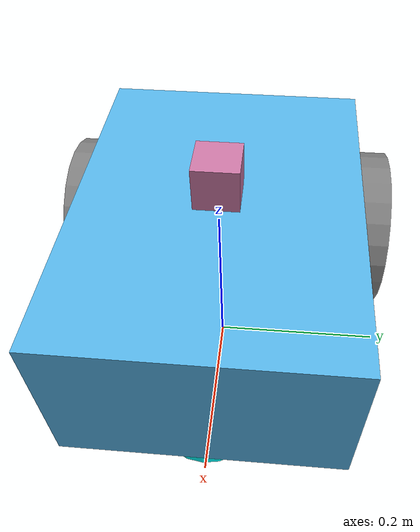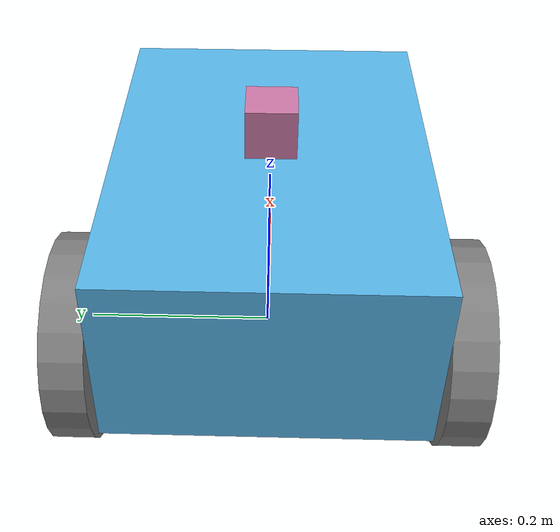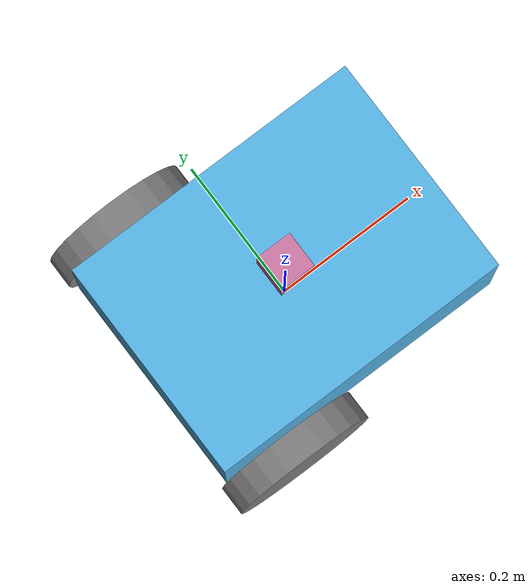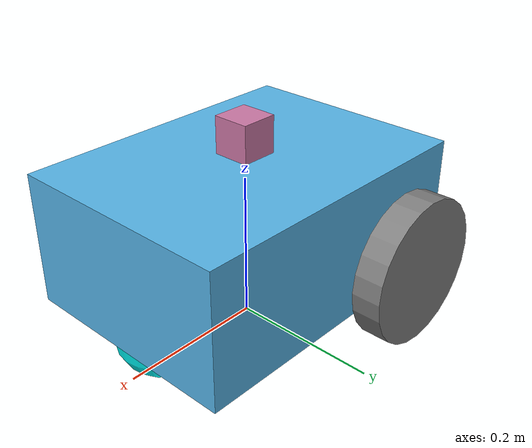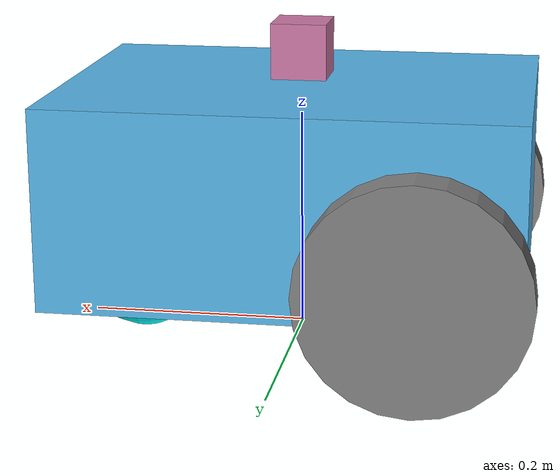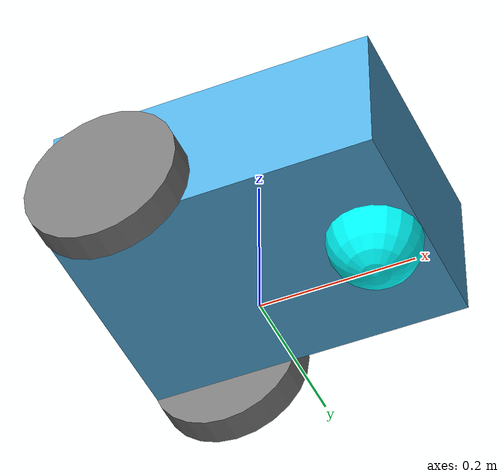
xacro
<?xml version="1.0"?>

<robot name="diffdrive_robot" xmlns:xacro="http://ros.org/wiki/xacro">
    <xacro:include filename="$(find diffdrive_description)/urdf/macros.urdf.xacro" />
    <xacro:property name="base_width" value="0.31" />
    <xacro:property name="base_length" value="0.42" />
    <xacro:property name="base_height" value="0.18" />
    <xacro:property name="base_mass" value="1.0" />

    <xacro:property name="wheel_radius" value="0.10" />
    <xacro:property name="wheel_width" value="0.04" />
    <xacro:property name="wheel_ygap" value="0.025" />
    <xacro:property name="wheel_zoff" value="0.05" />
    <xacro:property name="wheel_xoff" value="0.12" />
    <xacro:property name="wheel_mass" value="0.5" />

    <xacro:property name="caster_xoff" value="0.15" />
    <xacro:property name="caster_mass" value="0.10" />
    <xacro:property name="lidar_zoff" value="0.03" />

    <link name="base_footprint" />

    <link name="base_link">
        <xacro:box_inertia m="${base_mass}" w="${base_width}" d="${base_length}" h="${base_height}" />
        <visual>
            <geometry>
                <box size="${base_length} ${base_width} ${base_height}" />
            </geometry>
        </visual>
        <collision>
            <geometry>
                <box size="${base_length} ${base_width} ${base_height}" />
            </geometry>
        </collision>
    </link>

    <joint name="base_joint" type="fixed">
        <parent link="base_footprint" />
        <child link="base_link" />
        <origin xyz="0.0 0.0  ${wheel_radius + base_height/2 - wheel_zoff}" rpy="0 0 0" />
    </joint>

    <xacro:macro name="wheel" params="prefix x_reflect y_reflect">
        <link name="${prefix}_link">
            <visual>
                <origin xyz="0 0 0" rpy="${pi/2} 0 0" />
                <geometry>
                    <cylinder radius="${wheel_radius}" length="${wheel_width}" />
                </geometry>
                <material name="Gray">
                    <color rgba="0.5 0.5 0.5 1.0" />
                </material>
            </visual>
            <collision>
                <origin xyz="0 0 0" rpy="${pi/2} 0 0" />
                <geometry>
                    <cylinder radius="${wheel_radius}" length="${wheel_width}" />
                </geometry>
            </collision>
            <xacro:cylinder_inertia m="${wheel_mass}" r="${wheel_radius}" h="${wheel_width}" />
        </link>

        <joint name="${prefix}_joint" type="continuous">
            <parent link="base_link" />
            <child link="${prefix}_link" />
            <origin
                xyz="${x_reflect*wheel_xoff} ${y_reflect*(base_width/2+wheel_ygap)} ${-wheel_zoff}"
                rpy="0 0 0" />
            <axis xyz="0 1 0" />
        </joint>
    </xacro:macro>

    <xacro:wheel prefix="drivewhl_l" x_reflect="-1" y_reflect="1" />
    <xacro:wheel prefix="drivewhl_r" x_reflect="-1" y_reflect="-1" />

    <ros2_control name="IgnitionSystem" type="system">
        <hardware>
            <plugin>gz_ros2_control/GazeboSimSystem</plugin>
        </hardware>
        <joint name="drivewhl_l_joint">
        <command_interface name="velocity">
            <param name="min">-1</param>
            <param name="max">1</param>
        </command_interface>
        <state_interface name="position"/>
        <state_interface name="velocity"/>
        </joint>
        <joint name="drivewhl_r_joint">
        <command_interface name="velocity">
            <param name="min">-1</param>
            <param name="max">1</param>
        </command_interface>
        <state_interface name="position"/>
        <state_interface name="velocity"/>
        </joint>
    </ros2_control>

    <gazebo>
        <plugin filename="gz_ros2_control-system" name="gz_ros2_control::GazeboSimROS2ControlPlugin">
            <parameters>$(find diffdrive_bringup)/config/controllers.yaml</parameters>
            <ros>
                <remapping>/diff_drive_controller/cmd_vel_unstamped:=/cmd_vel</remapping>
                <remapping>/diff_drive_controller/odom:=/odom</remapping>
            </ros>
        </plugin>
    </gazebo>

    <link name="front_caster">
        <visual>
            <geometry>
                <sphere radius="${(wheel_radius+wheel_zoff-(base_height/2))}" />
            </geometry>
            <material name="Cyan">
                <color rgba="0 1.0 1.0 1.0" />
            </material>
        </visual>
        <collision>
            <geometry>
                <sphere radius="${(wheel_radius+wheel_zoff-(base_height/2))}" />
            </geometry>
        </collision>
        <xacro:sphere_inertia m="${caster_mass}" r="${(wheel_radius+wheel_zoff-(base_height/2))}" />
    </link>

    <joint name="caster_joint" type="fixed">
        <parent link="base_link" />
        <child link="front_caster" />
        <origin xyz="${caster_xoff} 0.0 ${-(base_height/2)}" rpy="0 0 0" />
    </joint>

    <link name="imu_link">
        <visual>
            <geometry>
                <box size="0.1 0.1 0.1" />
            </geometry>
        </visual>

        <collision>
            <geometry>
                <box size="0.1 0.1 0.1" />
            </geometry>
        </collision>

        <xacro:box_inertia m="0.1" w="0.1" d="0.1" h="0.1" />
    </link>

    <joint name="imu_joint" type="fixed">
        <parent link="base_link" />
        <child link="imu_link" />
        <origin xyz="0 0 0.01" />
    </joint>

    <gazebo reference="imu_link">
        <sensor name="imu_sensor" type="imu">
            <always_on>1</always_on>
            <update_rate>10</update_rate>
            <visualize>true</visualize>
            <topic>imu</topic>
            <gz_frame_id>imu_link</gz_frame_id>
        </sensor>
    </gazebo>

    <link name="lidar_link">
        <visual>
            <geometry>
                <box size="0.05 0.05 0.05" />
            </geometry>
        </visual>

        <collision>
            <geometry>
                <box size="0.05 0.05 0.05" />
            </geometry>
        </collision>
        <xacro:box_inertia m="0.1" w="0.1" d="0.1" h="0.1" />
    </link>

    <joint name="lidar_joint" type="fixed">
        <parent link="base_link" />
        <child link="lidar_link" />
        <origin xyz="0 0 ${base_height/2 + lidar_zoff}" />
    </joint>

    <gazebo reference="lidar_link">
        <sensor name="RGLLidar" type="custom">
            <plugin filename="RGLServerPluginInstance" name="rgl::RGLServerPluginInstance">
                <range>245</range>
                <update_rate>20</update_rate>
                <update_on_paused_sim>false</update_on_paused_sim>
                <topic>lidar</topic>
                <frame>lidar_link</frame>
                <pattern_uniform>
                    <horizontal>
                        <samples>600</samples>
                        <min_angle>-3.14159</min_angle>
                        <max_angle>3.14159</max_angle>
                    </horizontal>
                    <vertical>
                        <samples>600</samples>
                        <min_angle>-0.4</min_angle>
                        <max_angle>0.4</max_angle>
                    </vertical>
                </pattern_uniform>
            </plugin>
        </sensor>
    </gazebo>
</robot>

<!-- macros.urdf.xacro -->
<robot name="robot" xmlns:xacro="http://ros.org/wiki/xacro">
  <xacro:macro name="box_inertia" params="m w h d">
    <inertial>
      <origin xyz="0 0 0" rpy="${pi/2} 0 ${pi/2}"/>
      <mass value="${m}"/>
      <inertia ixx="${(m/12) * (h*h + d*d)}" ixy="0.0" ixz="0.0" iyy="${(m/12) * (w*w + d*d)}" iyz="0.0" izz="${(m/12) * (w*w + h*h)}"/>
    </inertial>
  </xacro:macro>

  <xacro:macro name="cylinder_inertia" params="m r h">
    <inertial>
      <origin xyz="0 0 0" rpy="${pi/2} 0 0" />
      <mass value="${m}"/>
      <inertia ixx="${(m/12) * (3*r*r + h*h)}" ixy = "0" ixz = "0" iyy="${(m/12) * (3*r*r + h*h)}" iyz = "0" izz="${(m/2) * (r*r)}"/>
    </inertial>
  </xacro:macro>

  <xacro:macro name="sphere_inertia" params="m r">
    <inertial>
      <mass value="${m}"/>
      <inertia ixx="${(2/5) * m * (r*r)}" ixy="0.0" ixz="0.0" iyy="${(2/5) * m * (r*r)}" iyz="0.0" izz="${(2/5) * m * (r*r)}"/>
    </inertial>
  </xacro:macro>
</robot>
